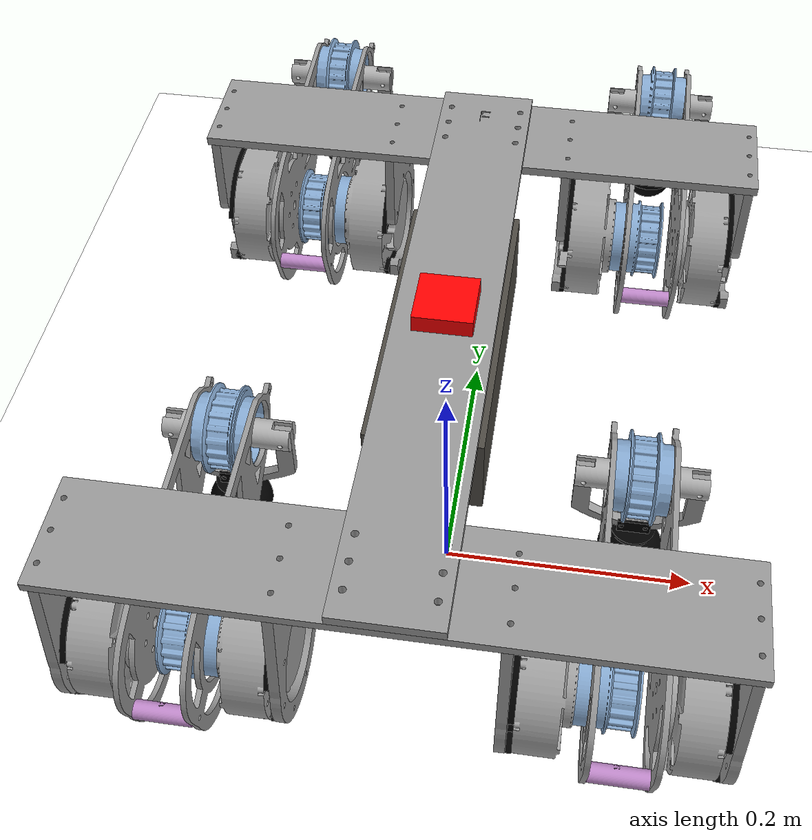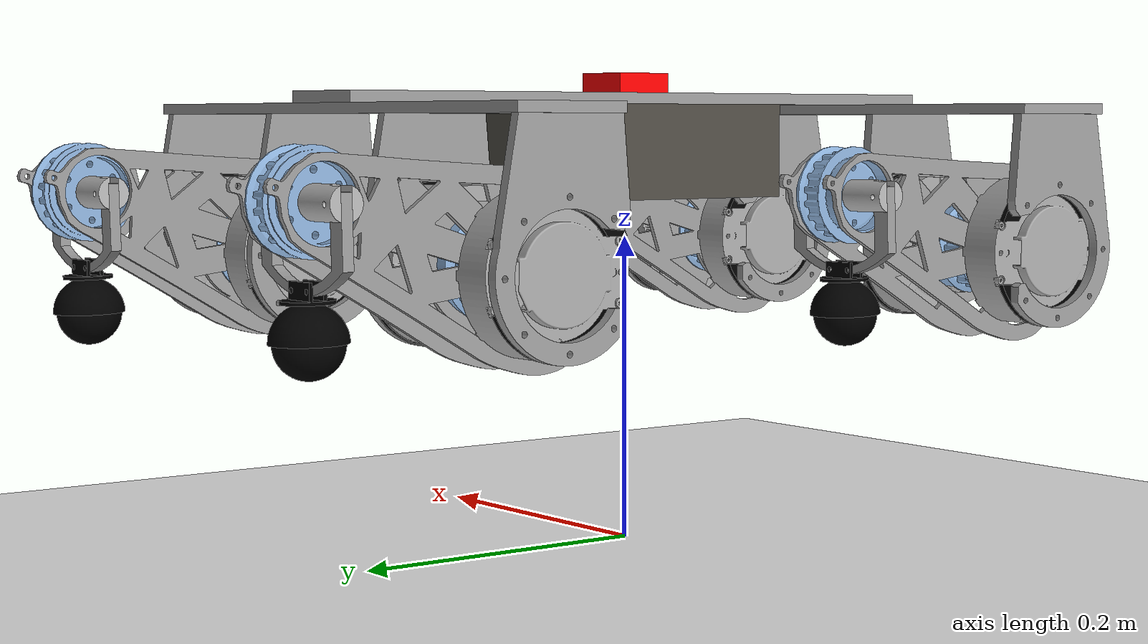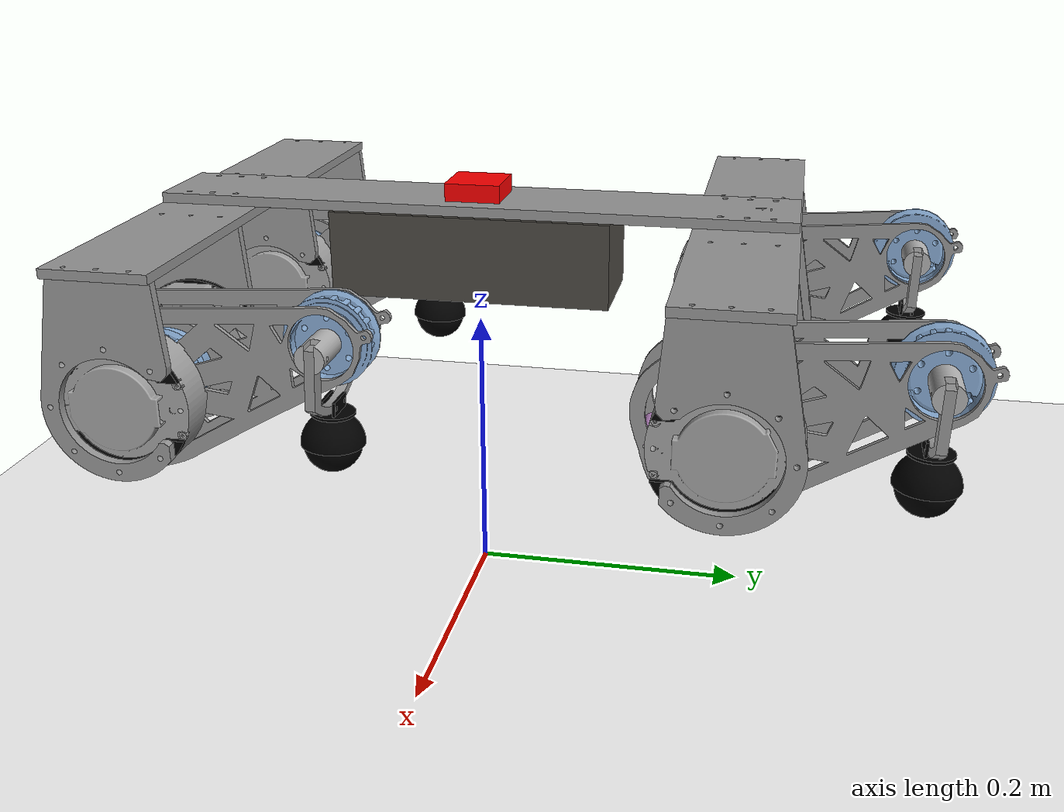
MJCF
<mujoco model="dog">
  <compiler angle="degree" coordinate="local" inertiafromgeom="false" meshdir="../onshape_folders/robot_dog/assets"/>
  <default>
    <joint armature=".05" damping="1.5" limited="true" solimplimit="0 .8 .03" solreflimit=".02 1" stiffness="0"/>
    <geom conaffinity="0" condim="3" contype="1" friction=".4 .1 .1" rgba="0.8 0.6 .4 1" solimp="0.0 0.8 0.01" solref="0.02 1"/>
    <default class="visual">
      <geom type="mesh" contype="0" conaffinity="0" group="2" rgba="0.5 0.5 0.5 1"/>
    </default>
  </default>

  <option gravity="0 0 -9.81" timestep="0.01"/>

  <asset>
    <texture builtin="gradient" height="100" rgb1="1 1 1" rgb2="0 0 0" type="skybox" width="100"/>
    <texture builtin="checker" height="100" name="texplane" rgb1="0.9098 0.8157 0.6000" rgb2="0.7608 0.6510 0.3961" type="2d" width="100"/>
    <material name="MatPlane" reflectance="0" shininess="1" specular="1" texrepeat="60 60" texture="texplane"/>

    <mesh name="motor" file="motor.stl"/>
    <mesh name="shoulder" file="shoulder.stl"/>
    <mesh name="motor_casing_spacers" file="motor_casing_spacers.stl"/>
    <mesh name="motor_casing" file="motor_casing.stl"/>
    <mesh name="battery" file="battery.stl"/>
    <mesh name="torso" file="torso.stl"/>
    <mesh name="imu" file="imu.stl"/>
    <mesh name="timing_belt_pulley_upper" file="timing_belt_pulley_upper.stl"/>
    <mesh name="spacer_between_thigh_connector" file="spacer_between_thigh_connector.stl"/>
    <mesh name="thigh_connecor_full" file="thigh_connecor_full.stl"/>
    <mesh name="thigh_connector_hollow" file="thigh_connector_hollow.stl"/>
    <mesh name="timing_belt_pulley_lower_shaft" file="timing_belt_pulley_lower_shaft.stl"/>
    <mesh name="timing_belt_pulley_lower" file="timing_belt_pulley_lower.stl"/>
    <mesh name="feet_connector" file="feet_connector.stl"/>
    <mesh name="ball_for_feet" file="ball_for_feet.stl"/>
    <mesh name="lower_shaft_connector_to_feet" file="lower_shaft_connector_to_feet.stl"/>
    <material name="motor_material" rgba="0.647059 0.647059 0.647059 1"/>
    <material name="shoulder_material" rgba="0.6 0.6 0.6 1"/>
    <material name="motor_casing_spacers_material" rgba="0 0 0 1"/>
    <material name="motor_casing_material" rgba="0.6 0.6 0.6 1"/>
    <material name="battery_material" rgba="0.301961 0.290196 0.262745 1"/>
    <material name="torso_material" rgba="0.6 0.6 0.6 1"/>
    <material name="imu_material" rgba="0 0 0 1"/>
    <material name="timing_belt_pulley_upper_material" rgba="0.541176 0.682353 0.839216 1"/>
    <material name="spacer_between_thigh_connector_material" rgba="0.764706 0.545098 0.803922 1"/>
    <material name="thigh_connecor_full_material" rgba="0.6 0.6 0.6 1"/>
    <material name="thigh_connector_hollow_material" rgba="0.6 0.6 0.6 1"/>
    <material name="timing_belt_pulley_lower_shaft_material" rgba="0.701961 0.701961 0.701961 1"/>
    <material name="timing_belt_pulley_lower_material" rgba="0.541176 0.682353 0.839216 1"/>
    <material name="feet_connector_material" rgba="0 0 0 1"/>
    <material name="ball_for_feet_material" rgba="0 0 0 1"/>
    <material name="lower_shaft_connector_to_feet_material" rgba="0.6 0.6 0.6 1"/>
  </asset>

  <worldbody>
    <light castshadow="false" cutoff="150" diffuse="1 1 1" dir="0 0 -1" directional="true" exponent="1" pos="0 0 2" specular=".1 .1 .1"/>
    <geom conaffinity="1" condim="3" material="MatPlane" name="floor" pos="0 0 0" rgba="1 1 1 1" size="40 40 40" type="plane"/>

    <!-- Spawn height chosen only to clear the floor at qpos=0's
         CAD-captured (non-standing) leg pose, not a real measurement --
         see file header. -->
    <body name="torso" pos="0 0 0.287">
      <camera name="track" mode="trackcom" pos="0 -1.2 0.15" xyaxes="1 0 0 0 0 1"/>
      <joint armature="0" damping="0" limited="false" name="root" pos="0 0 0" stiffness="0" type="free"/>
      <inertial pos="0 0.0005 -0.065342" mass="4.72603" diaginertia="0.10259 0.075676 0.15932"/>
      <geom name="torso_body" type="box" size="0.205 0.24312 0.077542" pos="0 0.0005 -0.065342" group="3"/>

      <!-- IMU: colocated with the real LSM6DSO32 -- real mounting
           position/orientation not yet given, placed at torso origin. -->
      <site name="imu_site" pos="0 0 0" rgba="1 0 0 1" size="0.02 0.02 0.02" type="box"/>

      <body name="battery_mass" pos="0.03775 -2.8298e-17 -0.03075" quat="0.70711 -2.417e-17 -0.70711 -2.417e-17">
        <inertial pos="0 0 0" mass="1.723" diaginertia="0.001 0.001 0.001"/>
      </body>
      <body name="motor_mass_1" pos="-0.075 0.19487 -0.09414" quat="0.5 0.5 -0.5 0.5">
        <inertial pos="0 0 0" mass="0.5662" diaginertia="0.001 0.001 0.001"/>
      </body>
      <body name="motor_mass_2" pos="-0.19015 0.19487 -0.094141" quat="-0.5 -0.5 -0.5 0.5">
        <inertial pos="0 0 0" mass="0.5662" diaginertia="0.001 0.001 0.001"/>
      </body>
      <body name="motor_mass_3" pos="0.19015 0.19487 -0.09414" quat="0.5 0.5 -0.5 0.5">
        <inertial pos="0 0 0" mass="0.5662" diaginertia="0.001 0.001 0.001"/>
      </body>
      <body name="motor_mass_4" pos="0.075 0.19487 -0.094141" quat="-0.5 -0.5 -0.5 0.5">
        <inertial pos="0 0 0" mass="0.5662" diaginertia="0.001 0.001 0.001"/>
      </body>
      <body name="motor_mass_5" pos="-0.075 -0.19387 -0.094141" quat="0.5 -0.5 0.5 0.5">
        <inertial pos="0 0 0" mass="0.5662" diaginertia="0.001 0.001 0.001"/>
      </body>
      <body name="motor_mass_6" pos="-0.19015 -0.19387 -0.09414" quat="0.5 -0.5 -0.5 -0.5">
        <inertial pos="0 0 0" mass="0.5662" diaginertia="0.001 0.001 0.001"/>
      </body>
      <body name="motor_mass_7" pos="0.19015 -0.19387 -0.094141" quat="0.5 -0.5 0.5 0.5">
        <inertial pos="0 0 0" mass="0.5662" diaginertia="0.001 0.001 0.001"/>
      </body>
      <body name="motor_mass_8" pos="0.075 -0.19387 -0.09414" quat="-0.5 0.5 0.5 0.5">
        <inertial pos="0 0 0" mass="0.5662" diaginertia="0.001 0.001 0.001"/>
      </body>
      <geom class="visual" pos="0 0 0" quat="1 0 0 0" mesh="torso" material="torso_material"/>
      <geom class="visual" pos="-4.33681e-19 0.1945 -0.0065" quat="1 0 0 0" mesh="shoulder" material="shoulder_material"/>
      <geom class="visual" pos="-4.33681e-19 -0.1935 -0.0065" quat="1 0 0 0" mesh="shoulder" material="shoulder_material"/>
      <geom class="visual" pos="0.0377501 -2.82977e-17 -0.0307499" quat="0.707105 -2.41702e-17 -0.707108 -2.41701e-17" mesh="battery" material="battery_material"/>
      <geom class="visual" pos="1.15094e-06 -0.000216697 0.0072" quat="1 0 0 0" mesh="imu" material="imu_material"/>
      <geom class="visual" pos="-0.0692004 0.194873 -0.0941405" quat="0.499998 -0.5 0.500002 -0.5" mesh="motor_casing" material="motor_casing_material"/>
      <geom class="visual" pos="-0.20245 0.194873 -0.0941405" quat="0.499998 -0.5 0.500002 -0.5" mesh="motor_casing" material="motor_casing_material"/>
      <geom class="visual" pos="0.19595 0.194873 -0.0941405" quat="0.499998 -0.5 0.500002 -0.5" mesh="motor_casing" material="motor_casing_material"/>
      <geom class="visual" pos="0.0626996 0.194873 -0.0941405" quat="0.499998 -0.5 0.500002 -0.5" mesh="motor_casing" material="motor_casing_material"/>
      <geom class="visual" pos="-0.0626996 -0.193873 -0.0941405" quat="-0.499998 0.5 0.500002 -0.5" mesh="motor_casing" material="motor_casing_material"/>
      <geom class="visual" pos="-0.19595 -0.193873 -0.0941405" quat="-0.499998 0.5 0.500002 -0.5" mesh="motor_casing" material="motor_casing_material"/>
      <geom class="visual" pos="0.20245 -0.193873 -0.0941405" quat="-0.499998 0.5 0.500002 -0.5" mesh="motor_casing" material="motor_casing_material"/>
      <geom class="visual" pos="0.0692004 -0.193873 -0.0941405" quat="-0.499998 0.5 0.500002 -0.5" mesh="motor_casing" material="motor_casing_material"/>
      <geom class="visual" pos="-0.0730004 0.194873 -0.094141" quat="0.499998 -0.5 0.500002 -0.5" mesh="motor_casing_spacers" material="motor_casing_spacers_material"/>
      <geom class="visual" pos="-0.0730004 0.194873 -0.0941405" quat="0.500001 0.500001 0.500001 0.499997" mesh="motor_casing_spacers" material="motor_casing_spacers_material"/>
      <geom class="visual" pos="-0.19595 0.194873 -0.0941405" quat="0.499999 0.500002 0.499999 0.499999" mesh="motor_casing_spacers" material="motor_casing_spacers_material"/>
      <geom class="visual" pos="0.195949 0.194873 -0.0941405" quat="0.500001 0.499997 -0.499999 -0.500002" mesh="motor_casing_spacers" material="motor_casing_spacers_material"/>
      <geom class="visual" pos="0.0691996 0.194873 -0.0941405" quat="0.500001 0.500001 0.500001 0.499997" mesh="motor_casing_spacers" material="motor_casing_spacers_material"/>
      <geom class="visual" pos="-0.0691996 -0.193873 -0.0941405" quat="0.500001 0.500001 -0.500001 -0.499997" mesh="motor_casing_spacers" material="motor_casing_spacers_material"/>
      <geom class="visual" pos="-0.195949 -0.193873 -0.0941405" quat="0.500001 0.499997 0.499999 0.500002" mesh="motor_casing_spacers" material="motor_casing_spacers_material"/>
      <geom class="visual" pos="0.19595 -0.193873 -0.0941405" quat="0.499999 0.500002 -0.499999 -0.499999" mesh="motor_casing_spacers" material="motor_casing_spacers_material"/>
      <geom class="visual" pos="0.0730004 -0.193873 -0.094141" quat="-0.499998 0.5 0.500002 -0.5" mesh="motor_casing_spacers" material="motor_casing_spacers_material"/>
      <geom class="visual" pos="0.0730004 -0.193873 -0.0941405" quat="0.499999 0.500002 -0.499999 -0.499999" mesh="motor_casing_spacers" material="motor_casing_spacers_material"/>
      <geom class="visual" pos="-0.0750004 0.194873 -0.0941405" quat="0.500002 0.499999 -0.500001 0.499997" mesh="motor" material="motor_material"/>
      <geom class="visual" pos="-0.19015 0.194873 -0.0941405" quat="-0.499997 -0.500001 -0.499999 0.500003" mesh="motor" material="motor_material"/>
      <geom class="visual" pos="0.190149 0.194873 -0.0941405" quat="0.500002 0.500001 -0.499997 0.499999" mesh="motor" material="motor_material"/>
      <geom class="visual" pos="0.0749996 0.194873 -0.0941405" quat="-0.499999 -0.499999 -0.499997 0.500004" mesh="motor" material="motor_material"/>
      <geom class="visual" pos="-0.0749996 -0.193873 -0.0941405" quat="0.500001 -0.500001 0.499999 0.499999" mesh="motor" material="motor_material"/>
      <geom class="visual" pos="-0.190149 -0.193873 -0.0941405" quat="0.500001 -0.499996 -0.500002 -0.500001" mesh="motor" material="motor_material"/>
      <geom class="visual" pos="0.19015 -0.193873 -0.0941405" quat="0.500002 -0.499999 0.499997 0.500001" mesh="motor" material="motor_material"/>
      <geom class="visual" pos="0.0750004 -0.193873 -0.0941405" quat="-0.499999 0.499999 0.500001 0.500001" mesh="motor" material="motor_material"/>
      <geom class="visual" pos="-0.134725 0.194874 -0.0941402" quat="0.707108 -3.53554e-06 -0.707105 -4.25651e-06" mesh="timing_belt_pulley_upper" material="timing_belt_pulley_upper_material"/>
      <geom class="visual" pos="-0.19595 0.194873 -0.0941405" quat="0.499998 -0.5 0.500001 -0.500001" mesh="motor_casing_spacers" material="motor_casing_spacers_material"/>
      <geom class="visual" pos="0.195949 0.194873 -0.0941405" quat="0.500001 -0.500001 -0.499998 0.500001" mesh="motor_casing_spacers" material="motor_casing_spacers_material"/>
      <geom class="visual" pos="0.0691996 0.194873 -0.0941405" quat="-0.499997 0.500001 -0.5 0.500002" mesh="motor_casing_spacers" material="motor_casing_spacers_material"/>
      <geom class="visual" pos="0.134725 0.194872 -0.0941408" quat="0.707105 -9.38187e-07 0.707108 -3.53553e-06" mesh="timing_belt_pulley_upper" material="timing_belt_pulley_upper_material"/>
      <geom class="visual" pos="-0.0691998 -0.193873 -0.0941405" quat="-0.499997 0.500001 0.500003 -0.499999" mesh="motor_casing_spacers" material="motor_casing_spacers_material"/>
      <geom class="visual" pos="-0.134725 -0.193873 -0.0941408" quat="9.38184e-07 0.707108 1.65917e-06 -0.707105" mesh="timing_belt_pulley_upper" material="timing_belt_pulley_upper_material"/>
      <geom class="visual" pos="-0.195949 -0.193873 -0.0941405" quat="0.500002 -0.499999 0.499999 -0.499999" mesh="motor_casing_spacers" material="motor_casing_spacers_material"/>
      <geom class="visual" pos="0.19595 -0.193873 -0.0941405" quat="-0.5 0.499998 0.500003 -0.499999" mesh="motor_casing_spacers" material="motor_casing_spacers_material"/>
      <geom class="visual" pos="0.134725 -0.193873 -0.0941402" quat="1.65916e-06 0.707105 -9.38193e-07 0.707108" mesh="timing_belt_pulley_upper" material="timing_belt_pulley_upper_material"/>

      <body name="leg_a_thigh" pos="0.158449 0.194873 -0.0941403" quat="0.500002 0.499996 -0.499999 -0.500002">
        <joint axis="-0 -0 1" name="leg_a_thigh" pos="0 0 0" range="-11.6 230.6" type="hinge"/>
        <inertial pos="-0.049315 0.0041836 0.02175" mass="0.22746" diaginertia="0.00033244 0.00096869 0.0012294"/>
        <geom name="leg_a_thigh" fromto="0 0 0  -0.12588 0.039193 0.04" size="0.02" type="capsule" group="3"/>
        <geom class="visual" pos="0.00136471 -0.0031313 -1.30889e-17" quat="0.1476 -1.09363e-22 4.01222e-22 0.989047" mesh="thigh_connecor_full" material="thigh_connecor_full_material"/>
        <geom class="visual" pos="0.0508206 -0.0140973 0.04" quat="-1.06638e-06 0.803729 0.594995 -7.89437e-07" mesh="spacer_between_thigh_connector" material="spacer_between_thigh_connector_material"/>
        <geom class="visual" pos="0.00136468 -0.00313163 0.0400001" quat="0.147595 1.11643e-06 -1.5081e-06 0.989048" mesh="thigh_connector_hollow" material="thigh_connector_hollow_material"/>

        <body name="leg_a_calf" pos="-0.125878 0.0391933 0.0400005" quat="-2.92221e-06 0.803729 0.594995 -5.12493e-07">
          <joint axis="-0 -0 1" name="leg_a_calf" pos="0 0 0" range="0 206.1" type="hinge"/>
          <inertial pos="-0.030512 0.0072378 0.01775" mass="0.18357" diaginertia="0.0001981 0.00033851 0.00031295"/>
          <geom name="leg_a_calf" fromto="0 0 0  -0.07138 0.02396 0.017595" rgba="0.9 0.6 0.6 1" size="0.017" type="capsule" group="3"/>
          <site name="leg_a_foot" pos="-0.07138 0.02396 0.017595" size="0.005"/>
          <geom class="visual" pos="1.92214e-18 -3.01189e-18 0.01825" quat="0.811857 3.64366e-22 1.37673e-22 0.583856" mesh="timing_belt_pulley_lower" material="timing_belt_pulley_lower_material"/>
          <geom class="visual" pos="-2.32063e-14 7.80901e-15 0.01775" quat="0.697855 -0.114001 -0.697858 -0.114001" mesh="timing_belt_pulley_lower_shaft" material="timing_belt_pulley_lower_shaft_material"/>
          <geom class="visual" pos="-0.0321145 0.0143136 0.0177499" quat="0.574068 0.412848 -0.57407 0.41285" mesh="lower_shaft_connector_to_feet" material="lower_shaft_connector_to_feet_material"/>
          <geom class="visual" pos="-0.0713801 0.0239601 0.017595" quat="0.113999 0.697856 -0.113998 0.697858" mesh="feet_connector" material="feet_connector_material"/>
          <geom class="visual" pos="-0.0903404 0.0303245 0.0175949" quat="0.113999 0.697856 -0.113998 0.697858" mesh="ball_for_feet" material="ball_for_feet_material"/>
        </body>
      </body>

      <body name="leg_b_thigh" pos="-0.15825 0.194873 -0.0941407" quat="-0.499997 -0.499997 0.500003 0.500002">
        <joint axis="-0 -0 -1" name="leg_b_thigh" pos="0 0 0" range="-231.8 11" type="hinge"/>
        <inertial pos="-0.04923 0.0043404 -0.02175" mass="0.22746" diaginertia="0.00033422 0.00096781 0.0012303"/>
        <geom name="leg_b_thigh" fromto="0 0 0  -0.1254 0.040731 -0.0035" size="0.02" type="capsule" group="3"/>
        <geom class="visual" pos="0.00135594 -0.00313511 -0.0035" quat="0.148985 -5.58752e-23 2.33841e-22 0.98884" mesh="thigh_connecor_full" material="thigh_connecor_full_material"/>
        <geom class="visual" pos="0.0507809 -0.0142396 -0.0035" quat="1.06749e-06 0.804561 0.59387 7.87943e-07" mesh="spacer_between_thigh_connector" material="spacer_between_thigh_connector_material"/>
        <geom class="visual" pos="0.00135599 -0.00313549 -0.0435001" quat="0.14898 -1.50965e-06 -1.11432e-06 0.98884" mesh="thigh_connector_hollow" material="thigh_connector_hollow_material"/>

        <body name="leg_b_calf" pos="-0.125403 0.0407312 -0.0035" quat="7.87939e-07 -0.593867 0.804563 -1.06749e-06">
          <joint axis="0 0 -1" name="leg_b_calf" pos="0 0 0" range="-213.3 0" type="hinge"/>
          <inertial pos="0.030553 -0.0071241 0.01775" mass="0.18357" diaginertia="0.0001976 0.00033881 0.00031276"/>
          <geom name="leg_b_calf" fromto="0 0 0  0.071462 -0.023714 0.017595" rgba="0.9 0.6 0.6 1" size="0.017" type="capsule" group="3"/>
          <site name="leg_b_foot" pos="0.071462 -0.023714 0.017595" size="0.005"/>
          <geom class="visual" pos="1.2436e-18 1.46378e-17 0.01825" quat="0.585252 1.1459e-21 -2.24966e-21 -0.810851" mesh="timing_belt_pulley_lower" material="timing_belt_pulley_lower_material"/>
          <geom class="visual" pos="2.32568e-14 -7.5644e-15 0.01775" quat="0.112799 0.698053 -0.112799 0.698051" mesh="timing_belt_pulley_lower_shaft" material="timing_belt_pulley_lower_shaft_material"/>
          <geom class="visual" pos="0.0321636 -0.0142029 0.0177499" quat="-0.413838 0.573358 0.413836 0.573357" mesh="lower_shaft_connector_to_feet" material="lower_shaft_connector_to_feet_material"/>
          <geom class="visual" pos="0.0714622 -0.0237141 0.017595" quat="0.698054 -0.112796 -0.698051 -0.112797" mesh="feet_connector" material="feet_connector_material"/>
          <geom class="visual" pos="0.0904443 -0.0300132 0.0175949" quat="0.698054 -0.112796 -0.698051 -0.112797" mesh="ball_for_feet" material="ball_for_feet_material"/>
        </body>
      </body>

      <body name="leg_c_thigh" pos="0.15825 -0.193873 -0.0941407" quat="0.499999 0.500003 0.499998 0.500001">
        <joint axis="-0 -0 -1" name="leg_c_thigh" pos="0 0 0" range="-7.6 235.6" type="hinge"/>
        <inertial pos="0.050242 0.0013005 -0.02175" mass="0.22746" diaginertia="0.00032916 0.00097039 0.0012278"/>
        <geom name="leg_c_thigh" fromto="0 0 0  0.12686 0.035951 -0.0035" size="0.02" type="capsule" group="3"/>
        <geom class="visual" pos="-0.00287135 0.00185009 -0.0035" quat="0.989424 1.96994e-23 -1.8349e-23 0.145053" mesh="thigh_connecor_full" material="thigh_connecor_full_material"/>
        <geom class="visual" pos="-0.0501147 -0.0164309 -0.0035" quat="-1.06435e-06 0.802197 -0.597059 7.92175e-07" mesh="spacer_between_thigh_connector" material="spacer_between_thigh_connector_material"/>
        <geom class="visual" pos="-0.00287132 0.00185045 -0.0434999" quat="0.989423 -1.12031e-06 -1.50522e-06 0.145056" mesh="thigh_connector_hollow" material="thigh_connector_hollow_material"/>

        <body name="leg_c_calf" pos="0.126856 0.0359509 -0.0035" quat="7.92176e-07 0.59706 0.802196 1.06435e-06">
          <joint axis="0 0 -1" name="leg_c_calf" pos="0 0 0" range="0 215.8" type="hinge"/>
          <inertial pos="-0.030329 -0.0077097 0.01775" mass="0.18357" diaginertia="0.00020036 0.00033712 0.00031383"/>
          <geom name="leg_c_calf" fromto="0 0 0  -0.071012 -0.025029 0.017595" rgba="0.9 0.6 0.6 1" size="0.017" type="capsule" group="3"/>
          <site name="leg_c_foot" pos="-0.071012 -0.025029 0.017595" size="0.005"/>
          <geom class="visual" pos="1.64675e-20 -5.72386e-18 0.01825" quat="0.577748 -6.46284e-22 -6.8713e-22 0.816216" mesh="timing_belt_pulley_lower" material="timing_belt_pulley_lower_material"/>
          <geom class="visual" pos="-2.31149e-14 -8.1508e-15 0.01775" quat="0.69698 0.119235 -0.696983 0.119234" mesh="timing_belt_pulley_lower_shaft" material="timing_belt_pulley_lower_shaft_material"/>
          <geom class="visual" pos="-0.0341232 -0.00847523 0.0177499" quat="0.408527 0.577152 -0.408529 0.577153" mesh="lower_shaft_connector_to_feet" material="lower_shaft_connector_to_feet_material"/>
          <geom class="visual" pos="-0.0710122 -0.0250294 0.017595" quat="-0.119237 0.69698 0.119237 0.696982" mesh="feet_connector" material="feet_connector_material"/>
          <geom class="visual" pos="-0.0898748 -0.0316779 0.0175949" quat="-0.119237 0.69698 0.119237 0.696982" mesh="ball_for_feet" material="ball_for_feet_material"/>
        </body>
      </body>

      <body name="leg_d_thigh" pos="-0.158449 -0.193873 -0.0941403" quat="0.500001 0.499998 0.499997 0.500004">
        <joint axis="-0 -0 1" name="leg_d_thigh" pos="0 0 0" range="-234 6.8" type="hinge"/>
        <inertial pos="0.050284 0.0012051 0.02175" mass="0.22746" diaginertia="0.00032809 0.00097096 0.0012273"/>
        <geom name="leg_d_thigh" fromto="0 0 0  0.12656 0.036927 0.04" size="0.02" type="capsule" group="3"/>
        <geom class="visual" pos="-0.00286824 0.00185491 -9.94546e-18" quat="0.989545 3.56577e-22 -4.93286e-23 0.144222" mesh="thigh_connecor_full" material="thigh_connecor_full_material"/>
        <geom class="visual" pos="-0.0501422 -0.0163467 0.04" quat="1.06369e-06 0.801695 -0.597733 -7.93069e-07" mesh="spacer_between_thigh_connector" material="spacer_between_thigh_connector_material"/>
        <geom class="visual" pos="-0.00286829 0.00185526 0.0399999" quat="0.989545 1.12157e-06 1.50428e-06 0.144225" mesh="thigh_connector_hollow" material="thigh_connector_hollow_material"/>

        <body name="leg_d_calf" pos="0.126562 0.0369268 0.0399995" quat="-7.93065e-07 0.801695 -0.597733 -1.06369e-06">
          <joint axis="-0 -0 1" name="leg_d_calf" pos="0 0 0" range="-213.7 0" type="hinge"/>
          <inertial pos="0.030428 0.007458 0.01775" mass="0.18357" diaginertia="0.00019915 0.00033788 0.00031337"/>
          <geom name="leg_d_calf" fromto="0 0 0  0.071211 0.024457 0.017595" rgba="0.9 0.6 0.6 1" size="0.017" type="capsule" group="3"/>
          <site name="leg_d_foot" pos="0.071211 0.024457 0.017595" size="0.005"/>
          <geom class="visual" pos="-6.39351e-19 -5.60961e-20 0.01825" quat="0.813884 -6.86267e-23 1.07165e-21 -0.581027" mesh="timing_belt_pulley_lower" material="timing_belt_pulley_lower_material"/>
          <geom class="visual" pos="2.31511e-14 7.96703e-15 0.01775" quat="-0.116429 0.697457 0.116429 0.697454" mesh="timing_belt_pulley_lower_shaft" material="timing_belt_pulley_lower_shaft_material"/>
          <geom class="visual" pos="0.0341903 0.00820034 0.0177499" quat="0.575505 -0.410848 -0.575503 -0.410846" mesh="lower_shaft_connector_to_feet" material="lower_shaft_connector_to_feet_material"/>
          <geom class="visual" pos="0.0712113 0.0244571 0.017595" quat="0.697456 0.116431 -0.697454 0.116432" mesh="feet_connector" material="feet_connector_material"/>
          <geom class="visual" pos="0.0901268 0.0309536 0.0175949" quat="0.697456 0.116431 -0.697454 0.116432" mesh="ball_for_feet" material="ball_for_feet_material"/>
        </body>
      </body>
    </body>
  </worldbody>

  <sensor>
    <accelerometer name="accelerometer" site="imu_site"/>
    <gyro name="gyro" site="imu_site"/>
  </sensor>

  <actuator>
    <position joint="leg_a_thigh" name="motor_1" kp="60" kv="4" ctrlrange="-0.202458 4.02473" forcerange="-20 20"/>
    <position joint="leg_a_calf" name="motor_2" kp="60" kv="4" ctrlrange="0 3.59712" forcerange="-20 20"/>
    <position joint="leg_b_calf" name="motor_3" kp="60" kv="4" ctrlrange="-3.72279 0" forcerange="-20 20"/>
    <position joint="leg_b_thigh" name="motor_4" kp="60" kv="4" ctrlrange="-4.04567 0.191986" forcerange="-20 20"/>
    <position joint="leg_c_thigh" name="motor_5" kp="60" kv="4" ctrlrange="-0.132645 4.112" forcerange="-20 20"/>
    <position joint="leg_c_calf" name="motor_6" kp="60" kv="4" ctrlrange="0 3.76642" forcerange="-20 20"/>
    <position joint="leg_d_calf" name="motor_7" kp="60" kv="4" ctrlrange="-3.72977 0" forcerange="-20 20"/>
    <position joint="leg_d_thigh" name="motor_8" kp="60" kv="4" ctrlrange="-4.08407 0.118682" forcerange="-20 20"/>
  </actuator>
</mujoco>
